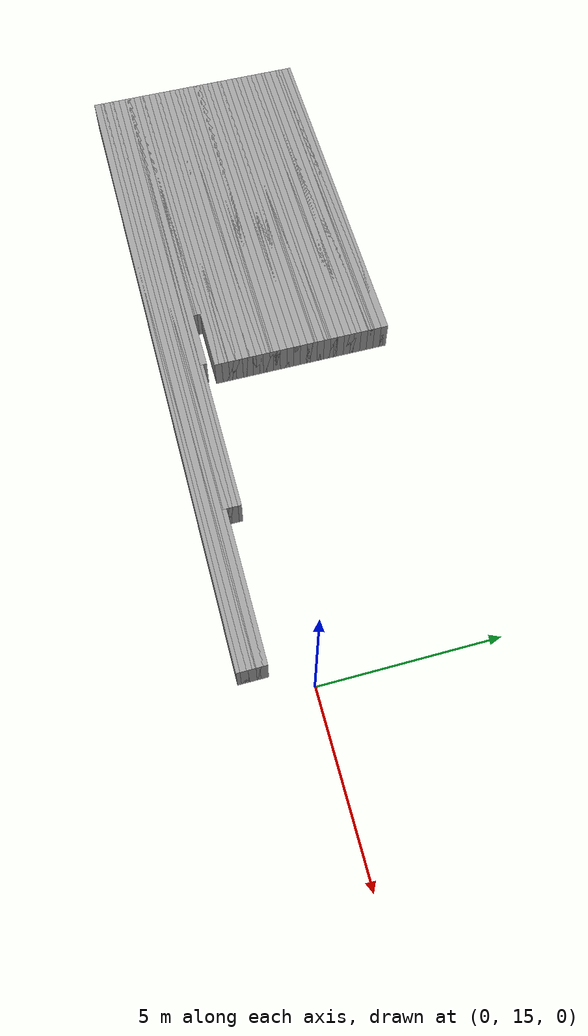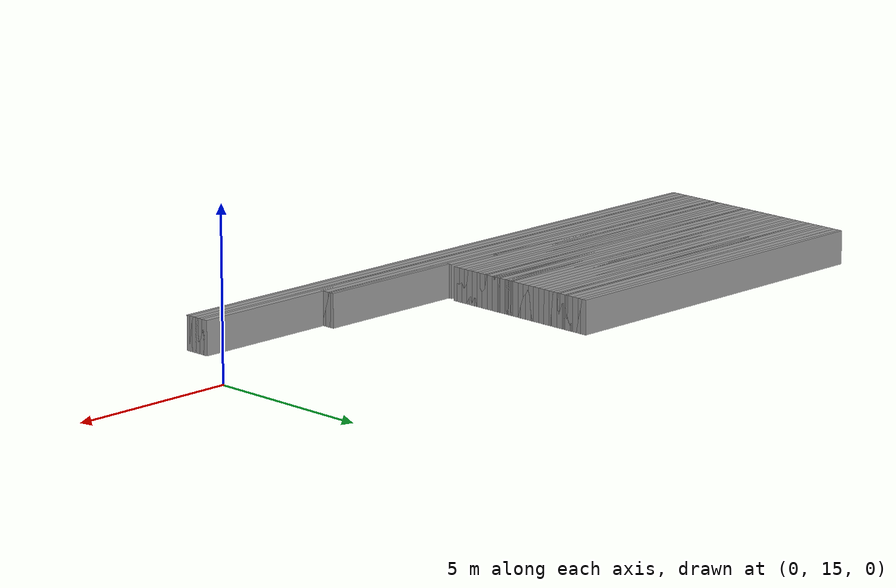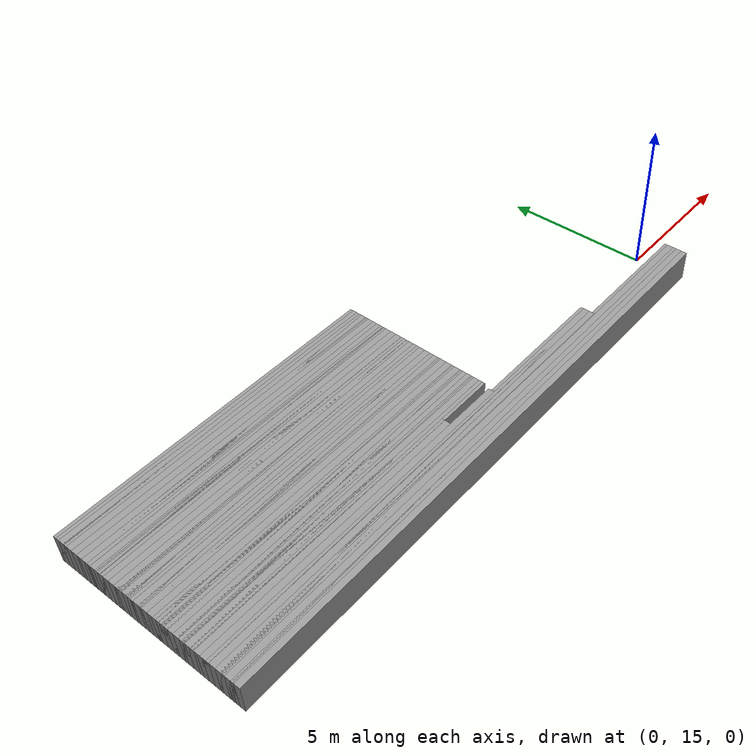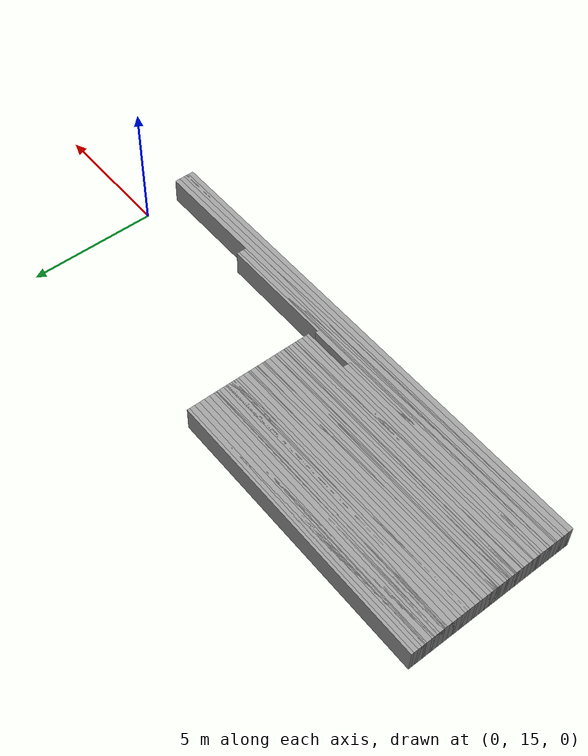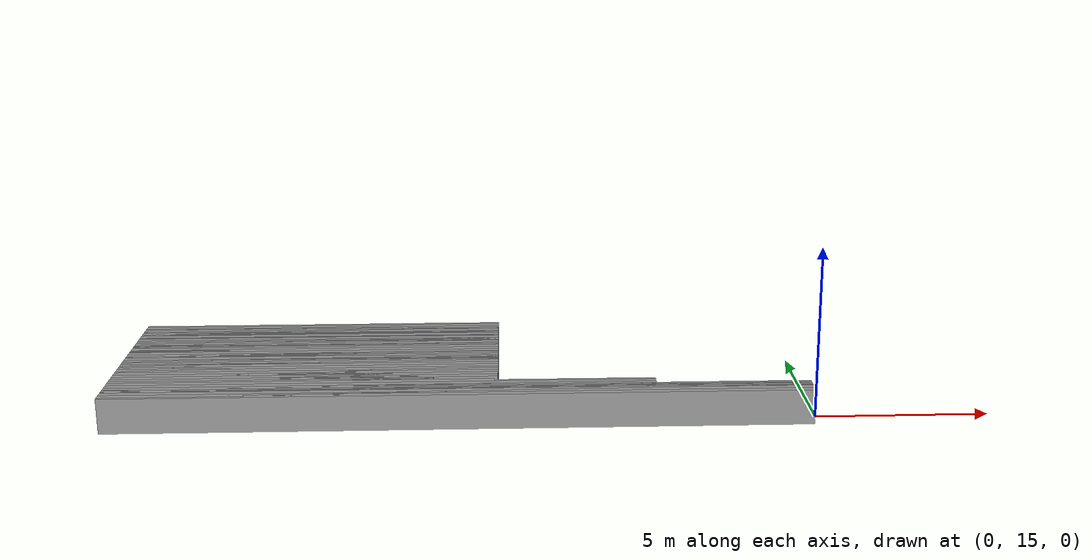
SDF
<sdf version="1.6">
 <world name="GridMap">
  <model name="GridMap">
   <link name="Wall_(101.5,132.0)">
    <collision name="Wall_(101.5,132.0)_Collision">
     <geometry><box><size>19.5 0.2 1.0</size></box></geometry>
     <pose>-10.15 13.200000000000001 0.5 0 -0 0</pose>
    </collision>
    <visual name="Wall_(101.5,132.0)_Visual">
     <geometry><box><size>19.5 0.2 1.0</size></box></geometry>
     <pose>-10.15 13.200000000000001 0.5 0 -0 0</pose>
     <material>
      <script><uri>file://media/materials/scripts/gazebo.material</uri><name>Gazebo/Grey</name></script>
      <ambient>1 1 1 1</ambient>
     </material>
     <meta><layer>0</layer></meta>
    </visual>
    <pose>0 0 0.5 0 -0 0</pose>
   </link>
   <link name="Wall_(101.5,133.0)">
    <collision name="Wall_(101.5,133.0)_Collision">
     <geometry><box><size>19.5 0.2 1.0</size></box></geometry>
     <pose>-10.15 13.3 0.5 0 -0 0</pose>
    </collision>
    <visual name="Wall_(101.5,133.0)_Visual">
     <geometry><box><size>19.5 0.2 1.0</size></box></geometry>
     <pose>-10.15 13.3 0.5 0 -0 0</pose>
     <material>
      <script><uri>file://media/materials/scripts/gazebo.material</uri><name>Gazebo/Grey</name></script>
      <ambient>1 1 1 1</ambient>
     </material>
     <meta><layer>0</layer></meta>
    </visual>
    <pose>0 0 0.5 0 -0 0</pose>
   </link>
   <link name="Wall_(101.5,134.0)">
    <collision name="Wall_(101.5,134.0)_Collision">
     <geometry><box><size>19.5 0.2 1.0</size></box></geometry>
     <pose>-10.15 13.4 0.5 0 -0 0</pose>
    </collision>
    <visual name="Wall_(101.5,134.0)_Visual">
     <geometry><box><size>19.5 0.2 1.0</size></box></geometry>
     <pose>-10.15 13.4 0.5 0 -0 0</pose>
     <material>
      <script><uri>file://media/materials/scripts/gazebo.material</uri><name>Gazebo/Grey</name></script>
      <ambient>1 1 1 1</ambient>
     </material>
     <meta><layer>0</layer></meta>
    </visual>
    <pose>0 0 0.5 0 -0 0</pose>
   </link>
   <link name="Wall_(101.5,135.0)">
    <collision name="Wall_(101.5,135.0)_Collision">
     <geometry><box><size>19.5 0.2 1.0</size></box></geometry>
     <pose>-10.15 13.5 0.5 0 -0 0</pose>
    </collision>
    <visual name="Wall_(101.5,135.0)_Visual">
     <geometry><box><size>19.5 0.2 1.0</size></box></geometry>
     <pose>-10.15 13.5 0.5 0 -0 0</pose>
     <material>
      <script><uri>file://media/materials/scripts/gazebo.material</uri><name>Gazebo/Grey</name></script>
      <ambient>1 1 1 1</ambient>
     </material>
     <meta><layer>0</layer></meta>
    </visual>
    <pose>0 0 0.5 0 -0 0</pose>
   </link>
   <link name="Wall_(101.5,136.0)">
    <collision name="Wall_(101.5,136.0)_Collision">
     <geometry><box><size>19.5 0.2 1.0</size></box></geometry>
     <pose>-10.15 13.600000000000001 0.5 0 -0 0</pose>
    </collision>
    <visual name="Wall_(101.5,136.0)_Visual">
     <geometry><box><size>19.5 0.2 1.0</size></box></geometry>
     <pose>-10.15 13.600000000000001 0.5 0 -0 0</pose>
     <material>
      <script><uri>file://media/materials/scripts/gazebo.material</uri><name>Gazebo/Grey</name></script>
      <ambient>1 1 1 1</ambient>
     </material>
     <meta><layer>0</layer></meta>
    </visual>
    <pose>0 0 0.5 0 -0 0</pose>
   </link>
   <link name="Wall_(101.5,137.0)">
    <collision name="Wall_(101.5,137.0)_Collision">
     <geometry><box><size>19.5 0.2 1.0</size></box></geometry>
     <pose>-10.15 13.700000000000001 0.5 0 -0 0</pose>
    </collision>
    <visual name="Wall_(101.5,137.0)_Visual">
     <geometry><box><size>19.5 0.2 1.0</size></box></geometry>
     <pose>-10.15 13.700000000000001 0.5 0 -0 0</pose>
     <material>
      <script><uri>file://media/materials/scripts/gazebo.material</uri><name>Gazebo/Grey</name></script>
      <ambient>1 1 1 1</ambient>
     </material>
     <meta><layer>0</layer></meta>
    </visual>
    <pose>0 0 0.5 0 -0 0</pose>
   </link>
   <link name="Wall_(101.5,138.0)">
    <collision name="Wall_(101.5,138.0)_Collision">
     <geometry><box><size>19.5 0.2 1.0</size></box></geometry>
     <pose>-10.15 13.8 0.5 0 -0 0</pose>
    </collision>
    <visual name="Wall_(101.5,138.0)_Visual">
     <geometry><box><size>19.5 0.2 1.0</size></box></geometry>
     <pose>-10.15 13.8 0.5 0 -0 0</pose>
     <material>
      <script><uri>file://media/materials/scripts/gazebo.material</uri><name>Gazebo/Grey</name></script>
      <ambient>1 1 1 1</ambient>
     </material>
     <meta><layer>0</layer></meta>
    </visual>
    <pose>0 0 0.5 0 -0 0</pose>
   </link>
   <link name="Wall_(123.0,139.0)">
    <collision name="Wall_(123.0,139.0)_Collision">
     <geometry><box><size>15.200000000000001 0.2 1.0</size></box></geometry>
     <pose>-12.3 13.9 0.5 0 -0 0</pose>
    </collision>
    <visual name="Wall_(123.0,139.0)_Visual">
     <geometry><box><size>15.200000000000001 0.2 1.0</size></box></geometry>
     <pose>-12.3 13.9 0.5 0 -0 0</pose>
     <material>
      <script><uri>file://media/materials/scripts/gazebo.material</uri><name>Gazebo/Grey</name></script>
      <ambient>1 1 1 1</ambient>
     </material>
     <meta><layer>0</layer></meta>
    </visual>
    <pose>0 0 0.5 0 -0 0</pose>
   </link>
   <link name="Wall_(123.0,140.0)">
    <collision name="Wall_(123.0,140.0)_Collision">
     <geometry><box><size>15.200000000000001 0.2 1.0</size></box></geometry>
     <pose>-12.3 14.0 0.5 0 -0 0</pose>
    </collision>
    <visual name="Wall_(123.0,140.0)_Visual">
     <geometry><box><size>15.200000000000001 0.2 1.0</size></box></geometry>
     <pose>-12.3 14.0 0.5 0 -0 0</pose>
     <material>
      <script><uri>file://media/materials/scripts/gazebo.material</uri><name>Gazebo/Grey</name></script>
      <ambient>1 1 1 1</ambient>
     </material>
     <meta><layer>0</layer></meta>
    </visual>
    <pose>0 0 0.5 0 -0 0</pose>
   </link>
   <link name="Wall_(123.0,141.0)">
    <collision name="Wall_(123.0,141.0)_Collision">
     <geometry><box><size>15.200000000000001 0.2 1.0</size></box></geometry>
     <pose>-12.3 14.100000000000001 0.5 0 -0 0</pose>
    </collision>
    <visual name="Wall_(123.0,141.0)_Visual">
     <geometry><box><size>15.200000000000001 0.2 1.0</size></box></geometry>
     <pose>-12.3 14.100000000000001 0.5 0 -0 0</pose>
     <material>
      <script><uri>file://media/materials/scripts/gazebo.material</uri><name>Gazebo/Grey</name></script>
      <ambient>1 1 1 1</ambient>
     </material>
     <meta><layer>0</layer></meta>
    </visual>
    <pose>0 0 0.5 0 -0 0</pose>
   </link>
   <link name="Wall_(123.0,142.0)">
    <collision name="Wall_(123.0,142.0)_Collision">
     <geometry><box><size>15.200000000000001 0.2 1.0</size></box></geometry>
     <pose>-12.3 14.200000000000001 0.5 0 -0 0</pose>
    </collision>
    <visual name="Wall_(123.0,142.0)_Visual">
     <geometry><box><size>15.200000000000001 0.2 1.0</size></box></geometry>
     <pose>-12.3 14.200000000000001 0.5 0 -0 0</pose>
     <material>
      <script><uri>file://media/materials/scripts/gazebo.material</uri><name>Gazebo/Grey</name></script>
      <ambient>1 1 1 1</ambient>
     </material>
     <meta><layer>0</layer></meta>
    </visual>
    <pose>0 0 0.5 0 -0 0</pose>
   </link>
   <link name="Wall_(145.5,143.0)">
    <collision name="Wall_(145.5,143.0)_Collision">
     <geometry><box><size>10.700000000000001 0.2 1.0</size></box></geometry>
     <pose>-14.55 14.3 0.5 0 -0 0</pose>
    </collision>
    <visual name="Wall_(145.5,143.0)_Visual">
     <geometry><box><size>10.700000000000001 0.2 1.0</size></box></geometry>
     <pose>-14.55 14.3 0.5 0 -0 0</pose>
     <material>
      <script><uri>file://media/materials/scripts/gazebo.material</uri><name>Gazebo/Grey</name></script>
      <ambient>1 1 1 1</ambient>
     </material>
     <meta><layer>0</layer></meta>
    </visual>
    <pose>0 0 0.5 0 -0 0</pose>
   </link>
   <link name="Wall_(154.0,144.0)">
    <collision name="Wall_(154.0,144.0)_Collision">
     <geometry><box><size>9.0 0.2 1.0</size></box></geometry>
     <pose>-15.4 14.4 0.5 0 -0 0</pose>
    </collision>
    <visual name="Wall_(154.0,144.0)_Visual">
     <geometry><box><size>9.0 0.2 1.0</size></box></geometry>
     <pose>-15.4 14.4 0.5 0 -0 0</pose>
     <material>
      <script><uri>file://media/materials/scripts/gazebo.material</uri><name>Gazebo/Grey</name></script>
      <ambient>1 1 1 1</ambient>
     </material>
     <meta><layer>0</layer></meta>
    </visual>
    <pose>0 0 0.5 0 -0 0</pose>
   </link>
   <link name="Wall_(154.0,145.0)">
    <collision name="Wall_(154.0,145.0)_Collision">
     <geometry><box><size>9.0 0.2 1.0</size></box></geometry>
     <pose>-15.4 14.5 0.5 0 -0 0</pose>
    </collision>
    <visual name="Wall_(154.0,145.0)_Visual">
     <geometry><box><size>9.0 0.2 1.0</size></box></geometry>
     <pose>-15.4 14.5 0.5 0 -0 0</pose>
     <material>
      <script><uri>file://media/materials/scripts/gazebo.material</uri><name>Gazebo/Grey</name></script>
      <ambient>1 1 1 1</ambient>
     </material>
     <meta><layer>0</layer></meta>
    </visual>
    <pose>0 0 0.5 0 -0 0</pose>
   </link>
   <link name="Wall_(154.0,146.0)">
    <collision name="Wall_(154.0,146.0)_Collision">
     <geometry><box><size>9.0 0.2 1.0</size></box></geometry>
     <pose>-15.4 14.600000000000001 0.5 0 -0 0</pose>
    </collision>
    <visual name="Wall_(154.0,146.0)_Visual">
     <geometry><box><size>9.0 0.2 1.0</size></box></geometry>
     <pose>-15.4 14.600000000000001 0.5 0 -0 0</pose>
     <material>
      <script><uri>file://media/materials/scripts/gazebo.material</uri><name>Gazebo/Grey</name></script>
      <ambient>1 1 1 1</ambient>
     </material>
     <meta><layer>0</layer></meta>
    </visual>
    <pose>0 0 0.5 0 -0 0</pose>
   </link>
   <link name="Wall_(145.0,147.0)">
    <collision name="Wall_(145.0,147.0)_Collision">
     <geometry><box><size>10.8 0.2 1.0</size></box></geometry>
     <pose>-14.5 14.700000000000001 0.5 0 -0 0</pose>
    </collision>
    <visual name="Wall_(145.0,147.0)_Visual">
     <geometry><box><size>10.8 0.2 1.0</size></box></geometry>
     <pose>-14.5 14.700000000000001 0.5 0 -0 0</pose>
     <material>
      <script><uri>file://media/materials/scripts/gazebo.material</uri><name>Gazebo/Grey</name></script>
      <ambient>1 1 1 1</ambient>
     </material>
     <meta><layer>0</layer></meta>
    </visual>
    <pose>0 0 0.5 0 -0 0</pose>
   </link>
   <link name="Wall_(145.0,148.0)">
    <collision name="Wall_(145.0,148.0)_Collision">
     <geometry><box><size>10.8 0.2 1.0</size></box></geometry>
     <pose>-14.5 14.8 0.5 0 -0 0</pose>
    </collision>
    <visual name="Wall_(145.0,148.0)_Visual">
     <geometry><box><size>10.8 0.2 1.0</size></box></geometry>
     <pose>-14.5 14.8 0.5 0 -0 0</pose>
     <material>
      <script><uri>file://media/materials/scripts/gazebo.material</uri><name>Gazebo/Grey</name></script>
      <ambient>1 1 1 1</ambient>
     </material>
     <meta><layer>0</layer></meta>
    </visual>
    <pose>0 0 0.5 0 -0 0</pose>
   </link>
   <link name="Wall_(145.0,149.0)">
    <collision name="Wall_(145.0,149.0)_Collision">
     <geometry><box><size>10.8 0.2 1.0</size></box></geometry>
     <pose>-14.5 14.9 0.5 0 -0 0</pose>
    </collision>
    <visual name="Wall_(145.0,149.0)_Visual">
     <geometry><box><size>10.8 0.2 1.0</size></box></geometry>
     <pose>-14.5 14.9 0.5 0 -0 0</pose>
     <material>
      <script><uri>file://media/materials/scripts/gazebo.material</uri><name>Gazebo/Grey</name></script>
      <ambient>1 1 1 1</ambient>
     </material>
     <meta><layer>0</layer></meta>
    </visual>
    <pose>0 0 0.5 0 -0 0</pose>
   </link>
   <link name="Wall_(145.0,150.0)">
    <collision name="Wall_(145.0,150.0)_Collision">
     <geometry><box><size>10.8 0.2 1.0</size></box></geometry>
     <pose>-14.5 15.0 0.5 0 -0 0</pose>
    </collision>
    <visual name="Wall_(145.0,150.0)_Visual">
     <geometry><box><size>10.8 0.2 1.0</size></box></geometry>
     <pose>-14.5 15.0 0.5 0 -0 0</pose>
     <material>
      <script><uri>file://media/materials/scripts/gazebo.material</uri><name>Gazebo/Grey</name></script>
      <ambient>1 1 1 1</ambient>
     </material>
     <meta><layer>0</layer></meta>
    </visual>
    <pose>0 0 0.5 0 -0 0</pose>
   </link>
   <link name="Wall_(145.0,151.0)">
    <collision name="Wall_(145.0,151.0)_Collision">
     <geometry><box><size>10.8 0.2 1.0</size></box></geometry>
     <pose>-14.5 15.100000000000001 0.5 0 -0 0</pose>
    </collision>
    <visual name="Wall_(145.0,151.0)_Visual">
     <geometry><box><size>10.8 0.2 1.0</size></box></geometry>
     <pose>-14.5 15.100000000000001 0.5 0 -0 0</pose>
     <material>
      <script><uri>file://media/materials/scripts/gazebo.material</uri><name>Gazebo/Grey</name></script>
      <ambient>1 1 1 1</ambient>
     </material>
     <meta><layer>0</layer></meta>
    </visual>
    <pose>0 0 0.5 0 -0 0</pose>
   </link>
   <link name="Wall_(145.0,152.0)">
    <collision name="Wall_(145.0,152.0)_Collision">
     <geometry><box><size>10.8 0.2 1.0</size></box></geometry>
     <pose>-14.5 15.200000000000001 0.5 0 -0 0</pose>
    </collision>
    <visual name="Wall_(145.0,152.0)_Visual">
     <geometry><box><size>10.8 0.2 1.0</size></box></geometry>
     <pose>-14.5 15.200000000000001 0.5 0 -0 0</pose>
     <material>
      <script><uri>file://media/materials/scripts/gazebo.material</uri><name>Gazebo/Grey</name></script>
      <ambient>1 1 1 1</ambient>
     </material>
     <meta><layer>0</layer></meta>
    </visual>
    <pose>0 0 0.5 0 -0 0</pose>
   </link>
   <link name="Wall_(145.0,153.0)">
    <collision name="Wall_(145.0,153.0)_Collision">
     <geometry><box><size>10.8 0.2 1.0</size></box></geometry>
     <pose>-14.5 15.3 0.5 0 -0 0</pose>
    </collision>
    <visual name="Wall_(145.0,153.0)_Visual">
     <geometry><box><size>10.8 0.2 1.0</size></box></geometry>
     <pose>-14.5 15.3 0.5 0 -0 0</pose>
     <material>
      <script><uri>file://media/materials/scripts/gazebo.material</uri><name>Gazebo/Grey</name></script>
      <ambient>1 1 1 1</ambient>
     </material>
     <meta><layer>0</layer></meta>
    </visual>
    <pose>0 0 0.5 0 -0 0</pose>
   </link>
   <link name="Wall_(145.0,154.0)">
    <collision name="Wall_(145.0,154.0)_Collision">
     <geometry><box><size>10.8 0.2 1.0</size></box></geometry>
     <pose>-14.5 15.4 0.5 0 -0 0</pose>
    </collision>
    <visual name="Wall_(145.0,154.0)_Visual">
     <geometry><box><size>10.8 0.2 1.0</size></box></geometry>
     <pose>-14.5 15.4 0.5 0 -0 0</pose>
     <material>
      <script><uri>file://media/materials/scripts/gazebo.material</uri><name>Gazebo/Grey</name></script>
      <ambient>1 1 1 1</ambient>
     </material>
     <meta><layer>0</layer></meta>
    </visual>
    <pose>0 0 0.5 0 -0 0</pose>
   </link>
   <link name="Wall_(145.0,155.0)">
    <collision name="Wall_(145.0,155.0)_Collision">
     <geometry><box><size>10.8 0.2 1.0</size></box></geometry>
     <pose>-14.5 15.5 0.5 0 -0 0</pose>
    </collision>
    <visual name="Wall_(145.0,155.0)_Visual">
     <geometry><box><size>10.8 0.2 1.0</size></box></geometry>
     <pose>-14.5 15.5 0.5 0 -0 0</pose>
     <material>
      <script><uri>file://media/materials/scripts/gazebo.material</uri><name>Gazebo/Grey</name></script>
      <ambient>1 1 1 1</ambient>
     </material>
     <meta><layer>0</layer></meta>
    </visual>
    <pose>0 0 0.5 0 -0 0</pose>
   </link>
   <link name="Wall_(145.0,156.0)">
    <collision name="Wall_(145.0,156.0)_Collision">
     <geometry><box><size>10.8 0.2 1.0</size></box></geometry>
     <pose>-14.5 15.600000000000001 0.5 0 -0 0</pose>
    </collision>
    <visual name="Wall_(145.0,156.0)_Visual">
     <geometry><box><size>10.8 0.2 1.0</size></box></geometry>
     <pose>-14.5 15.600000000000001 0.5 0 -0 0</pose>
     <material>
      <script><uri>file://media/materials/scripts/gazebo.material</uri><name>Gazebo/Grey</name></script>
      <ambient>1 1 1 1</ambient>
     </material>
     <meta><layer>0</layer></meta>
    </visual>
    <pose>0 0 0.5 0 -0 0</pose>
   </link>
   <link name="Wall_(145.0,157.0)">
    <collision name="Wall_(145.0,157.0)_Collision">
     <geometry><box><size>10.8 0.2 1.0</size></box></geometry>
     <pose>-14.5 15.700000000000001 0.5 0 -0 0</pose>
    </collision>
    <visual name="Wall_(145.0,157.0)_Visual">
     <geometry><box><size>10.8 0.2 1.0</size></box></geometry>
     <pose>-14.5 15.700000000000001 0.5 0 -0 0</pose>
     <material>
      <script><uri>file://media/materials/scripts/gazebo.material</uri><name>Gazebo/Grey</name></script>
      <ambient>1 1 1 1</ambient>
     </material>
     <meta><layer>0</layer></meta>
    </visual>
    <pose>0 0 0.5 0 -0 0</pose>
   </link>
   <link name="Wall_(145.0,158.0)">
    <collision name="Wall_(145.0,158.0)_Collision">
     <geometry><box><size>10.8 0.2 1.0</size></box></geometry>
     <pose>-14.5 15.8 0.5 0 -0 0</pose>
    </collision>
    <visual name="Wall_(145.0,158.0)_Visual">
     <geometry><box><size>10.8 0.2 1.0</size></box></geometry>
     <pose>-14.5 15.8 0.5 0 -0 0</pose>
     <material>
      <script><uri>file://media/materials/scripts/gazebo.material</uri><name>Gazebo/Grey</name></script>
      <ambient>1 1 1 1</ambient>
     </material>
     <meta><layer>0</layer></meta>
    </visual>
    <pose>0 0 0.5 0 -0 0</pose>
   </link>
   <link name="Wall_(145.0,159.0)">
    <collision name="Wall_(145.0,159.0)_Collision">
     <geometry><box><size>10.8 0.2 1.0</size></box></geometry>
     <pose>-14.5 15.9 0.5 0 -0 0</pose>
    </collision>
    <visual name="Wall_(145.0,159.0)_Visual">
     <geometry><box><size>10.8 0.2 1.0</size></box></geometry>
     <pose>-14.5 15.9 0.5 0 -0 0</pose>
     <material>
      <script><uri>file://media/materials/scripts/gazebo.material</uri><name>Gazebo/Grey</name></script>
      <ambient>1 1 1 1</ambient>
     </material>
     <meta><layer>0</layer></meta>
    </visual>
    <pose>0 0 0.5 0 -0 0</pose>
   </link>
   <link name="Wall_(145.0,160.0)">
    <collision name="Wall_(145.0,160.0)_Collision">
     <geometry><box><size>10.8 0.2 1.0</size></box></geometry>
     <pose>-14.5 16.0 0.5 0 -0 0</pose>
    </collision>
    <visual name="Wall_(145.0,160.0)_Visual">
     <geometry><box><size>10.8 0.2 1.0</size></box></geometry>
     <pose>-14.5 16.0 0.5 0 -0 0</pose>
     <material>
      <script><uri>file://media/materials/scripts/gazebo.material</uri><name>Gazebo/Grey</name></script>
      <ambient>1 1 1 1</ambient>
     </material>
     <meta><layer>0</layer></meta>
    </visual>
    <pose>0 0 0.5 0 -0 0</pose>
   </link>
   <link name="Wall_(145.0,161.0)">
    <collision name="Wall_(145.0,161.0)_Collision">
     <geometry><box><size>10.8 0.2 1.0</size></box></geometry>
     <pose>-14.5 16.1 0.5 0 -0 0</pose>
    </collision>
    <visual name="Wall_(145.0,161.0)_Visual">
     <geometry><box><size>10.8 0.2 1.0</size></box></geometry>
     <pose>-14.5 16.1 0.5 0 -0 0</pose>
     <material>
      <script><uri>file://media/materials/scripts/gazebo.material</uri><name>Gazebo/Grey</name></script>
      <ambient>1 1 1 1</ambient>
     </material>
     <meta><layer>0</layer></meta>
    </visual>
    <pose>0 0 0.5 0 -0 0</pose>
   </link>
   <link name="Wall_(145.0,162.0)">
    <collision name="Wall_(145.0,162.0)_Collision">
     <geometry><box><size>10.8 0.2 1.0</size></box></geometry>
     <pose>-14.5 16.2 0.5 0 -0 0</pose>
    </collision>
    <visual name="Wall_(145.0,162.0)_Visual">
     <geometry><box><size>10.8 0.2 1.0</size></box></geometry>
     <pose>-14.5 16.2 0.5 0 -0 0</pose>
     <material>
      <script><uri>file://media/materials/scripts/gazebo.material</uri><name>Gazebo/Grey</name></script>
      <ambient>1 1 1 1</ambient>
     </material>
     <meta><layer>0</layer></meta>
    </visual>
    <pose>0 0 0.5 0 -0 0</pose>
   </link>
   <link name="Wall_(145.0,163.0)">
    <collision name="Wall_(145.0,163.0)_Collision">
     <geometry><box><size>10.8 0.2 1.0</size></box></geometry>
     <pose>-14.5 16.3 0.5 0 -0 0</pose>
    </collision>
    <visual name="Wall_(145.0,163.0)_Visual">
     <geometry><box><size>10.8 0.2 1.0</size></box></geometry>
     <pose>-14.5 16.3 0.5 0 -0 0</pose>
     <material>
      <script><uri>file://media/materials/scripts/gazebo.material</uri><name>Gazebo/Grey</name></script>
      <ambient>1 1 1 1</ambient>
     </material>
     <meta><layer>0</layer></meta>
    </visual>
    <pose>0 0 0.5 0 -0 0</pose>
   </link>
   <link name="Wall_(145.0,164.0)">
    <collision name="Wall_(145.0,164.0)_Collision">
     <geometry><box><size>10.8 0.2 1.0</size></box></geometry>
     <pose>-14.5 16.400000000000002 0.5 0 -0 0</pose>
    </collision>
    <visual name="Wall_(145.0,164.0)_Visual">
     <geometry><box><size>10.8 0.2 1.0</size></box></geometry>
     <pose>-14.5 16.400000000000002 0.5 0 -0 0</pose>
     <material>
      <script><uri>file://media/materials/scripts/gazebo.material</uri><name>Gazebo/Grey</name></script>
      <ambient>1 1 1 1</ambient>
     </material>
     <meta><layer>0</layer></meta>
    </visual>
    <pose>0 0 0.5 0 -0 0</pose>
   </link>
   <link name="Wall_(145.0,165.0)">
    <collision name="Wall_(145.0,165.0)_Collision">
     <geometry><box><size>10.8 0.2 1.0</size></box></geometry>
     <pose>-14.5 16.5 0.5 0 -0 0</pose>
    </collision>
    <visual name="Wall_(145.0,165.0)_Visual">
     <geometry><box><size>10.8 0.2 1.0</size></box></geometry>
     <pose>-14.5 16.5 0.5 0 -0 0</pose>
     <material>
      <script><uri>file://media/materials/scripts/gazebo.material</uri><name>Gazebo/Grey</name></script>
      <ambient>1 1 1 1</ambient>
     </material>
     <meta><layer>0</layer></meta>
    </visual>
    <pose>0 0 0.5 0 -0 0</pose>
   </link>
   <link name="Wall_(145.0,166.0)">
    <collision name="Wall_(145.0,166.0)_Collision">
     <geometry><box><size>10.8 0.2 1.0</size></box></geometry>
     <pose>-14.5 16.6 0.5 0 -0 0</pose>
    </collision>
    <visual name="Wall_(145.0,166.0)_Visual">
     <geometry><box><size>10.8 0.2 1.0</size></box></geometry>
     <pose>-14.5 16.6 0.5 0 -0 0</pose>
     <material>
      <script><uri>file://media/materials/scripts/gazebo.material</uri><name>Gazebo/Grey</name></script>
      <ambient>1 1 1 1</ambient>
     </material>
     <meta><layer>0</layer></meta>
    </visual>
    <pose>0 0 0.5 0 -0 0</pose>
   </link>
   <link name="Wall_(145.0,167.0)">
    <collision name="Wall_(145.0,167.0)_Collision">
     <geometry><box><size>10.8 0.2 1.0</size></box></geometry>
     <pose>-14.5 16.7 0.5 0 -0 0</pose>
    </collision>
    <visual name="Wall_(145.0,167.0)_Visual">
     <geometry><box><size>10.8 0.2 1.0</size></box></geometry>
     <pose>-14.5 16.7 0.5 0 -0 0</pose>
     <material>
      <script><uri>file://media/materials/scripts/gazebo.material</uri><name>Gazebo/Grey</name></script>
      <ambient>1 1 1 1</ambient>
     </material>
     <meta><layer>0</layer></meta>
    </visual>
    <pose>0 0 0.5 0 -0 0</pose>
   </link>
   <link name="Wall_(145.0,168.0)">
    <collision name="Wall_(145.0,168.0)_Collision">
     <geometry><box><size>10.8 0.2 1.0</size></box></geometry>
     <pose>-14.5 16.8 0.5 0 -0 0</pose>
    </collision>
    <visual name="Wall_(145.0,168.0)_Visual">
     <geometry><box><size>10.8 0.2 1.0</size></box></geometry>
     <pose>-14.5 16.8 0.5 0 -0 0</pose>
     <material>
      <script><uri>file://media/materials/scripts/gazebo.material</uri><name>Gazebo/Grey</name></script>
      <ambient>1 1 1 1</ambient>
     </material>
     <meta><layer>0</layer></meta>
    </visual>
    <pose>0 0 0.5 0 -0 0</pose>
   </link>
   <link name="Wall_(145.0,169.0)">
    <collision name="Wall_(145.0,169.0)_Collision">
     <geometry><box><size>10.8 0.2 1.0</size></box></geometry>
     <pose>-14.5 16.900000000000002 0.5 0 -0 0</pose>
    </collision>
    <visual name="Wall_(145.0,169.0)_Visual">
     <geometry><box><size>10.8 0.2 1.0</size></box></geometry>
     <pose>-14.5 16.900000000000002 0.5 0 -0 0</pose>
     <material>
      <script><uri>file://media/materials/scripts/gazebo.material</uri><name>Gazebo/Grey</name></script>
      <ambient>1 1 1 1</ambient>
     </material>
     <meta><layer>0</layer></meta>
    </visual>
    <pose>0 0 0.5 0 -0 0</pose>
   </link>
   <link name="Wall_(145.0,170.0)">
    <collision name="Wall_(145.0,170.0)_Collision">
     <geometry><box><size>10.8 0.2 1.0</size></box></geometry>
     <pose>-14.5 17.0 0.5 0 -0 0</pose>
    </collision>
    <visual name="Wall_(145.0,170.0)_Visual">
     <geometry><box><size>10.8 0.2 1.0</size></box></geometry>
     <pose>-14.5 17.0 0.5 0 -0 0</pose>
     <material>
      <script><uri>file://media/materials/scripts/gazebo.material</uri><name>Gazebo/Grey</name></script>
      <ambient>1 1 1 1</ambient>
     </material>
     <meta><layer>0</layer></meta>
    </visual>
    <pose>0 0 0.5 0 -0 0</pose>
   </link>
   <link name="Wall_(145.0,171.0)">
    <collision name="Wall_(145.0,171.0)_Collision">
     <geometry><box><size>10.8 0.2 1.0</size></box></geometry>
     <pose>-14.5 17.1 0.5 0 -0 0</pose>
    </collision>
    <visual name="Wall_(145.0,171.0)_Visual">
     <geometry><box><size>10.8 0.2 1.0</size></box></geometry>
     <pose>-14.5 17.1 0.5 0 -0 0</pose>
     <material>
      <script><uri>file://media/materials/scripts/gazebo.material</uri><name>Gazebo/Grey</name></script>
      <ambient>1 1 1 1</ambient>
     </material>
     <meta><layer>0</layer></meta>
    </visual>
    <pose>0 0 0.5 0 -0 0</pose>
   </link>
   <link name="Wall_(145.0,172.0)">
    <collision name="Wall_(145.0,172.0)_Collision">
     <geometry><box><size>10.8 0.2 1.0</size></box></geometry>
     <pose>-14.5 17.2 0.5 0 -0 0</pose>
    </collision>
    <visual name="Wall_(145.0,172.0)_Visual">
     <geometry><box><size>10.8 0.2 1.0</size></box></geometry>
     <pose>-14.5 17.2 0.5 0 -0 0</pose>
     <material>
      <script><uri>file://media/materials/scripts/gazebo.material</uri><name>Gazebo/Grey</name></script>
      <ambient>1 1 1 1</ambient>
     </material>
     <meta><layer>0</layer></meta>
    </visual>
    <pose>0 0 0.5 0 -0 0</pose>
   </link>
   <link name="Wall_(145.0,173.0)">
    <collision name="Wall_(145.0,173.0)_Collision">
     <geometry><box><size>10.8 0.2 1.0</size></box></geometry>
     <pose>-14.5 17.3 0.5 0 -0 0</pose>
    </collision>
    <visual name="Wall_(145.0,173.0)_Visual">
     <geometry><box><size>10.8 0.2 1.0</size></box></geometry>
     <pose>-14.5 17.3 0.5 0 -0 0</pose>
     <material>
      <script><uri>file://media/materials/scripts/gazebo.material</uri><name>Gazebo/Grey</name></script>
      <ambient>1 1 1 1</ambient>
     </material>
     <meta><layer>0</layer></meta>
    </visual>
    <pose>0 0 0.5 0 -0 0</pose>
   </link>
   <link name="Wall_(145.0,174.0)">
    <collision name="Wall_(145.0,174.0)_Collision">
     <geometry><box><size>10.8 0.2 1.0</size></box></geometry>
     <pose>-14.5 17.400000000000002 0.5 0 -0 0</pose>
    </collision>
    <visual name="Wall_(145.0,174.0)_Visual">
     <geometry><box><size>10.8 0.2 1.0</size></box></geometry>
     <pose>-14.5 17.400000000000002 0.5 0 -0 0</pose>
     <material>
      <script><uri>file://media/materials/scripts/gazebo.material</uri><name>Gazebo/Grey</name></script>
      <ambient>1 1 1 1</ambient>
     </material>
     <meta><layer>0</layer></meta>
    </visual>
    <pose>0 0 0.5 0 -0 0</pose>
   </link>
   <link name="Wall_(145.0,175.0)">
    <collision name="Wall_(145.0,175.0)_Collision">
     <geometry><box><size>10.8 0.2 1.0</size></box></geometry>
     <pose>-14.5 17.5 0.5 0 -0 0</pose>
    </collision>
    <visual name="Wall_(145.0,175.0)_Visual">
     <geometry><box><size>10.8 0.2 1.0</size></box></geometry>
     <pose>-14.5 17.5 0.5 0 -0 0</pose>
     <material>
      <script><uri>file://media/materials/scripts/gazebo.material</uri><name>Gazebo/Grey</name></script>
      <ambient>1 1 1 1</ambient>
     </material>
     <meta><layer>0</layer></meta>
    </visual>
    <pose>0 0 0.5 0 -0 0</pose>
   </link>
   <link name="Wall_(145.0,176.0)">
    <collision name="Wall_(145.0,176.0)_Collision">
     <geometry><box><size>10.8 0.2 1.0</size></box></geometry>
     <pose>-14.5 17.6 0.5 0 -0 0</pose>
    </collision>
    <visual name="Wall_(145.0,176.0)_Visual">
     <geometry><box><size>10.8 0.2 1.0</size></box></geometry>
     <pose>-14.5 17.6 0.5 0 -0 0</pose>
     <material>
      <script><uri>file://media/materials/scripts/gazebo.material</uri><name>Gazebo/Grey</name></script>
      <ambient>1 1 1 1</ambient>
     </material>
     <meta><layer>0</layer></meta>
    </visual>
    <pose>0 0 0.5 0 -0 0</pose>
   </link>
   <link name="Wall_(145.0,177.0)">
    <collision name="Wall_(145.0,177.0)_Collision">
     <geometry><box><size>10.8 0.2 1.0</size></box></geometry>
     <pose>-14.5 17.7 0.5 0 -0 0</pose>
    </collision>
    <visual name="Wall_(145.0,177.0)_Visual">
     <geometry><box><size>10.8 0.2 1.0</size></box></geometry>
     <pose>-14.5 17.7 0.5 0 -0 0</pose>
     <material>
      <script><uri>file://media/materials/scripts/gazebo.material</uri><name>Gazebo/Grey</name></script>
      <ambient>1 1 1 1</ambient>
     </material>
     <meta><layer>0</layer></meta>
    </visual>
    <pose>0 0 0.5 0 -0 0</pose>
   </link>
   <link name="Wall_(145.0,178.0)">
    <collision name="Wall_(145.0,178.0)_Collision">
     <geometry><box><size>10.8 0.2 1.0</size></box></geometry>
     <pose>-14.5 17.8 0.5 0 -0 0</pose>
    </collision>
    <visual name="Wall_(145.0,178.0)_Visual">
     <geometry><box><size>10.8 0.2 1.0</size></box></geometry>
     <pose>-14.5 17.8 0.5 0 -0 0</pose>
     <material>
      <script><uri>file://media/materials/scripts/gazebo.material</uri><name>Gazebo/Grey</name></script>
      <ambient>1 1 1 1</ambient>
     </material>
     <meta><layer>0</layer></meta>
    </visual>
    <pose>0 0 0.5 0 -0 0</pose>
   </link>
   <link name="Wall_(145.0,179.0)">
    <collision name="Wall_(145.0,179.0)_Collision">
     <geometry><box><size>10.8 0.2 1.0</size></box></geometry>
     <pose>-14.5 17.900000000000002 0.5 0 -0 0</pose>
    </collision>
    <visual name="Wall_(145.0,179.0)_Visual">
     <geometry><box><size>10.8 0.2 1.0</size></box></geometry>
     <pose>-14.5 17.900000000000002 0.5 0 -0 0</pose>
     <material>
      <script><uri>file://media/materials/scripts/gazebo.material</uri><name>Gazebo/Grey</name></script>
      <ambient>1 1 1 1</ambient>
     </material>
     <meta><layer>0</layer></meta>
    </visual>
    <pose>0 0 0.5 0 -0 0</pose>
   </link>
   <link name="Wall_(145.0,180.0)">
    <collision name="Wall_(145.0,180.0)_Collision">
     <geometry><box><size>10.8 0.2 1.0</size></box></geometry>
     <pose>-14.5 18.0 0.5 0 -0 0</pose>
    </collision>
    <visual name="Wall_(145.0,180.0)_Visual">
     <geometry><box><size>10.8 0.2 1.0</size></box></geometry>
     <pose>-14.5 18.0 0.5 0 -0 0</pose>
     <material>
      <script><uri>file://media/materials/scripts/gazebo.material</uri><name>Gazebo/Grey</name></script>
      <ambient>1 1 1 1</ambient>
     </material>
     <meta><layer>0</layer></meta>
    </visual>
    <pose>0 0 0.5 0 -0 0</pose>
   </link>
   <link name="Wall_(145.0,181.0)">
    <collision name="Wall_(145.0,181.0)_Collision">
     <geometry><box><size>10.8 0.2 1.0</size></box></geometry>
     <pose>-14.5 18.1 0.5 0 -0 0</pose>
    </collision>
    <visual name="Wall_(145.0,181.0)_Visual">
     <geometry><box><size>10.8 0.2 1.0</size></box></geometry>
     <pose>-14.5 18.1 0.5 0 -0 0</pose>
     <material>
      <script><uri>file://media/materials/scripts/gazebo.material</uri><name>Gazebo/Grey</name></script>
      <ambient>1 1 1 1</ambient>
     </material>
     <meta><layer>0</layer></meta>
    </visual>
    <pose>0 0 0.5 0 -0 0</pose>
   </link>
   <link name="Wall_(145.0,182.0)">
    <collision name="Wall_(145.0,182.0)_Collision">
     <geometry><box><size>10.8 0.2 1.0</size></box></geometry>
     <pose>-14.5 18.2 0.5 0 -0 0</pose>
    </collision>
    <visual name="Wall_(145.0,182.0)_Visual">
     <geometry><box><size>10.8 0.2 1.0</size></box></geometry>
     <pose>-14.5 18.2 0.5 0 -0 0</pose>
     <material>
      <script><uri>file://media/materials/scripts/gazebo.material</uri><name>Gazebo/Grey</name></script>
      <ambient>1 1 1 1</ambient>
     </material>
     <meta><layer>0</layer></meta>
    </visual>
    <pose>0 0 0.5 0 -0 0</pose>
   </link>
   <link name="Wall_(145.0,183.0)">
    <collision name="Wall_(145.0,183.0)_Collision">
     <geometry><box><size>10.8 0.2 1.0</size></box></geometry>
     <pose>-14.5 18.3 0.5 0 -0 0</pose>
    </collision>
    <visual name="Wall_(145.0,183.0)_Visual">
     <geometry><box><size>10.8 0.2 1.0</size></box></geometry>
     <pose>-14.5 18.3 0.5 0 -0 0</pose>
     <material>
      <script><uri>file://media/materials/scripts/gazebo.material</uri><name>Gazebo/Grey</name></script>
      <ambient>1 1 1 1</ambient>
     </material>
     <meta><layer>0</layer></meta>
    </visual>
    <pose>0 0 0.5 0 -0 0</pose>
   </link>
   <link name="Wall_(145.0,184.0)">
    <collision name="Wall_(145.0,184.0)_Collision">
     <geometry><box><size>10.8 0.2 1.0</size></box></geometry>
     <pose>-14.5 18.400000000000002 0.5 0 -0 0</pose>
    </collision>
    <visual name="Wall_(145.0,184.0)_Visual">
     <geometry><box><size>10.8 0.2 1.0</size></box></geometry>
     <pose>-14.5 18.400000000000002 0.5 0 -0 0</pose>
     <material>
      <script><uri>file://media/materials/scripts/gazebo.material</uri><name>Gazebo/Grey</name></script>
      <ambient>1 1 1 1</ambient>
     </material>
     <meta><layer>0</layer></meta>
    </visual>
    <pose>0 0 0.5 0 -0 0</pose>
   </link>
   <link name="Wall_(145.0,185.0)">
    <collision name="Wall_(145.0,185.0)_Collision">
     <geometry><box><size>10.8 0.2 1.0</size></box></geometry>
     <pose>-14.5 18.5 0.5 0 -0 0</pose>
    </collision>
    <visual name="Wall_(145.0,185.0)_Visual">
     <geometry><box><size>10.8 0.2 1.0</size></box></geometry>
     <pose>-14.5 18.5 0.5 0 -0 0</pose>
     <material>
      <script><uri>file://media/materials/scripts/gazebo.material</uri><name>Gazebo/Grey</name></script>
      <ambient>1 1 1 1</ambient>
     </material>
     <meta><layer>0</layer></meta>
    </visual>
    <pose>0 0 0.5 0 -0 0</pose>
   </link>
   <link name="Wall_(145.0,186.0)">
    <collision name="Wall_(145.0,186.0)_Collision">
     <geometry><box><size>10.8 0.2 1.0</size></box></geometry>
     <pose>-14.5 18.6 0.5 0 -0 0</pose>
    </collision>
    <visual name="Wall_(145.0,186.0)_Visual">
     <geometry><box><size>10.8 0.2 1.0</size></box></geometry>
     <pose>-14.5 18.6 0.5 0 -0 0</pose>
     <material>
      <script><uri>file://media/materials/scripts/gazebo.material</uri><name>Gazebo/Grey</name></script>
      <ambient>1 1 1 1</ambient>
     </material>
     <meta><layer>0</layer></meta>
    </visual>
    <pose>0 0 0.5 0 -0 0</pose>
   </link>
   <link name="Wall_(145.0,187.0)">
    <collision name="Wall_(145.0,187.0)_Collision">
     <geometry><box><size>10.8 0.2 1.0</size></box></geometry>
     <pose>-14.5 18.7 0.5 0 -0 0</pose>
    </collision>
    <visual name="Wall_(145.0,187.0)_Visual">
     <geometry><box><size>10.8 0.2 1.0</size></box></geometry>
     <pose>-14.5 18.7 0.5 0 -0 0</pose>
     <material>
      <script><uri>file://media/materials/scripts/gazebo.material</uri><name>Gazebo/Grey</name></script>
      <ambient>1 1 1 1</ambient>
     </material>
     <meta><layer>0</layer></meta>
    </visual>
    <pose>0 0 0.5 0 -0 0</pose>
   </link>
   <link name="Wall_(145.0,188.0)">
    <collision name="Wall_(145.0,188.0)_Collision">
     <geometry><box><size>10.8 0.2 1.0</size></box></geometry>
     <pose>-14.5 18.8 0.5 0 -0 0</pose>
    </collision>
    <visual name="Wall_(145.0,188.0)_Visual">
     <geometry><box><size>10.8 0.2 1.0</size></box></geometry>
     <pose>-14.5 18.8 0.5 0 -0 0</pose>
     <material>
      <script><uri>file://media/materials/scripts/gazebo.material</uri><name>Gazebo/Grey</name></script>
      <ambient>1 1 1 1</ambient>
     </material>
     <meta><layer>0</layer></meta>
    </visual>
    <pose>0 0 0.5 0 -0 0</pose>
   </link>
   <link name="Wall_(145.0,189.0)">
    <collision name="Wall_(145.0,189.0)_Collision">
     <geometry><box><size>10.8 0.2 1.0</size></box></geometry>
     <pose>-14.5 18.900000000000002 0.5 0 -0 0</pose>
    </collision>
    <visual name="Wall_(145.0,189.0)_Visual">
     <geometry><box><size>10.8 0.2 1.0</size></box></geometry>
     <pose>-14.5 18.900000000000002 0.5 0 -0 0</pose>
     <material>
      <script><uri>file://media/materials/scripts/gazebo.material</uri><name>Gazebo/Grey</name></script>
      <ambient>1 1 1 1</ambient>
     </material>
     <meta><layer>0</layer></meta>
    </visual>
    <pose>0 0 0.5 0 -0 0</pose>
   </link>
   <link name="Wall_(145.0,190.0)">
    <collision name="Wall_(145.0,190.0)_Collision">
     <geometry><box><size>10.8 0.2 1.0</size></box></geometry>
     <pose>-14.5 19.0 0.5 0 -0 0</pose>
    </collision>
    <visual name="Wall_(145.0,190.0)_Visual">
     <geometry><box><size>10.8 0.2 1.0</size></box></geometry>
     <pose>-14.5 19.0 0.5 0 -0 0</pose>
     <material>
      <script><uri>file://media/materials/scripts/gazebo.material</uri><name>Gazebo/Grey</name></script>
      <ambient>1 1 1 1</ambient>
     </material>
     <meta><layer>0</layer></meta>
    </visual>
    <pose>0 0 0.5 0 -0 0</pose>
   </link>
   <link name="Wall_(145.0,191.0)">
    <collision name="Wall_(145.0,191.0)_Collision">
     <geometry><box><size>10.8 0.2 1.0</size></box></geometry>
     <pose>-14.5 19.1 0.5 0 -0 0</pose>
    </collision>
    <visual name="Wall_(145.0,191.0)_Visual">
     <geometry><box><size>10.8 0.2 1.0</size></box></geometry>
     <pose>-14.5 19.1 0.5 0 -0 0</pose>
     <material>
      <script><uri>file://media/materials/scripts/gazebo.material</uri><name>Gazebo/Grey</name></script>
      <ambient>1 1 1 1</ambient>
     </material>
     <meta><layer>0</layer></meta>
    </visual>
    <pose>0 0 0.5 0 -0 0</pose>
   </link>
   <link name="Wall_(145.0,192.0)">
    <collision name="Wall_(145.0,192.0)_Collision">
     <geometry><box><size>10.8 0.2 1.0</size></box></geometry>
     <pose>-14.5 19.200000000000003 0.5 0 -0 0</pose>
    </collision>
    <visual name="Wall_(145.0,192.0)_Visual">
     <geometry><box><size>10.8 0.2 1.0</size></box></geometry>
     <pose>-14.5 19.200000000000003 0.5 0 -0 0</pose>
     <material>
      <script><uri>file://media/materials/scripts/gazebo.material</uri><name>Gazebo/Grey</name></script>
      <ambient>1 1 1 1</ambient>
     </material>
     <meta><layer>0</layer></meta>
    </visual>
    <pose>0 0 0.5 0 -0 0</pose>
   </link>
   <link name="Wall_(145.0,193.0)">
    <collision name="Wall_(145.0,193.0)_Collision">
     <geometry><box><size>10.8 0.2 1.0</size></box></geometry>
     <pose>-14.5 19.3 0.5 0 -0 0</pose>
    </collision>
    <visual name="Wall_(145.0,193.0)_Visual">
     <geometry><box><size>10.8 0.2 1.0</size></box></geometry>
     <pose>-14.5 19.3 0.5 0 -0 0</pose>
     <material>
      <script><uri>file://media/materials/scripts/gazebo.material</uri><name>Gazebo/Grey</name></script>
      <ambient>1 1 1 1</ambient>
     </material>
     <meta><layer>0</layer></meta>
    </visual>
    <pose>0 0 0.5 0 -0 0</pose>
   </link>
   <link name="Wall_(145.0,194.0)">
    <collision name="Wall_(145.0,194.0)_Collision">
     <geometry><box><size>10.8 0.2 1.0</size></box></geometry>
     <pose>-14.5 19.400000000000002 0.5 0 -0 0</pose>
    </collision>
    <visual name="Wall_(145.0,194.0)_Visual">
     <geometry><box><size>10.8 0.2 1.0</size></box></geometry>
     <pose>-14.5 19.400000000000002 0.5 0 -0 0</pose>
     <material>
      <script><uri>file://media/materials/scripts/gazebo.material</uri><name>Gazebo/Grey</name></script>
      <ambient>1 1 1 1</ambient>
     </material>
     <meta><layer>0</layer></meta>
    </visual>
    <pose>0 0 0.5 0 -0 0</pose>
   </link>
   <link name="Wall_(145.0,195.0)">
    <collision name="Wall_(145.0,195.0)_Collision">
     <geometry><box><size>10.8 0.2 1.0</size></box></geometry>
     <pose>-14.5 19.5 0.5 0 -0 0</pose>
    </collision>
    <visual name="Wall_(145.0,195.0)_Visual">
     <geometry><box><size>10.8 0.2 1.0</size></box></geometry>
     <pose>-14.5 19.5 0.5 0 -0 0</pose>
     <material>
      <script><uri>file://media/materials/scripts/gazebo.material</uri><name>Gazebo/Grey</name></script>
      <ambient>1 1 1 1</ambient>
     </material>
     <meta><layer>0</layer></meta>
    </visual>
    <pose>0 0 0.5 0 -0 0</pose>
   </link>
   <link name="Wall_(145.0,196.0)">
    <collision name="Wall_(145.0,196.0)_Collision">
     <geometry><box><size>10.8 0.2 1.0</size></box></geometry>
     <pose>-14.5 19.6 0.5 0 -0 0</pose>
    </collision>
    <visual name="Wall_(145.0,196.0)_Visual">
     <geometry><box><size>10.8 0.2 1.0</size></box></geometry>
     <pose>-14.5 19.6 0.5 0 -0 0</pose>
     <material>
      <script><uri>file://media/materials/scripts/gazebo.material</uri><name>Gazebo/Grey</name></script>
      <ambient>1 1 1 1</ambient>
     </material>
     <meta><layer>0</layer></meta>
    </visual>
    <pose>0 0 0.5 0 -0 0</pose>
   </link>
   <static>1</static>
  </model>
 </world>
</sdf>
